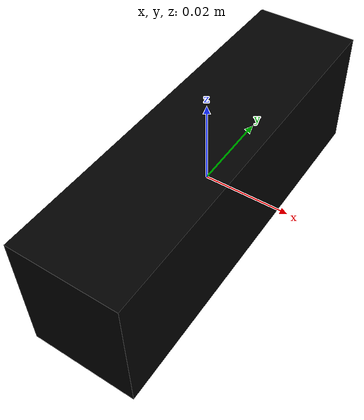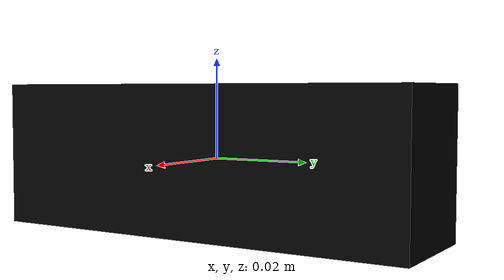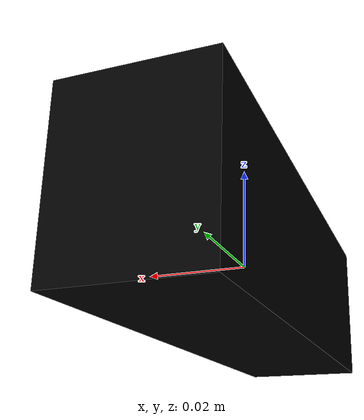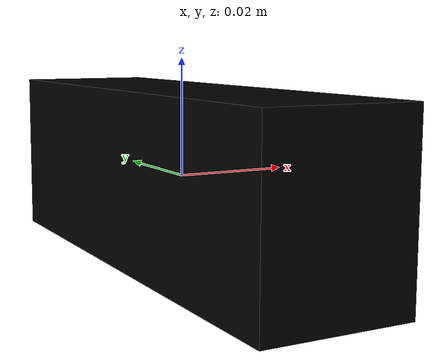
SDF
<?xml version="1.0" ?>
<sdf version="1.4">
  <model name="conveyor_cam">
    <static>true</static>
    <link name="link">
      <gravity>false</gravity>
      <inertial>
        <mass>0.02</mass>
      </inertial>
      <visual name="visual">
	<pose>0 0 0 0 0 0</pose>
        <geometry>
          <box>
	    <size>0.025 0.09 0.03</size>
	  </box>
        </geometry>
	<cast_shadows>false</cast_shadows>
	<material>
	  <ambient>0.0 0.0 0.0 1.0</ambient>
	  <diffuse>0.0 0.0 0.0 1.0</diffuse>
	</material>
      </visual>
    </link>
    <plugin name="ConveyorVision" filename="libconveyor_vision.so" />
  </model>
</sdf>
